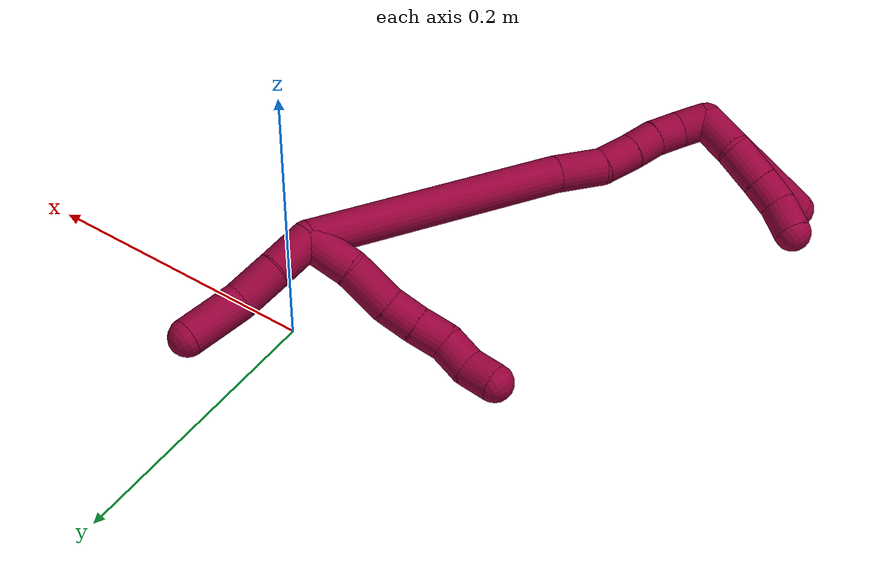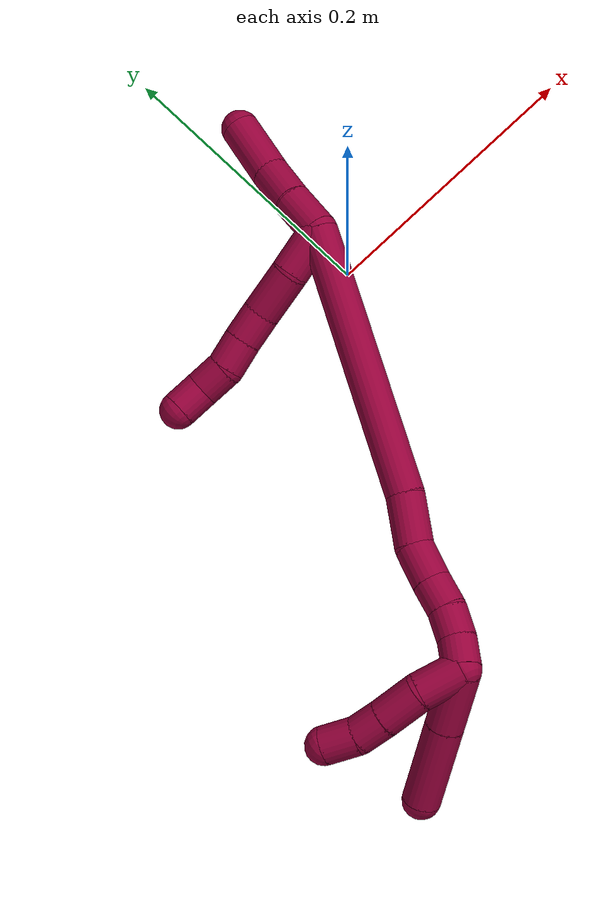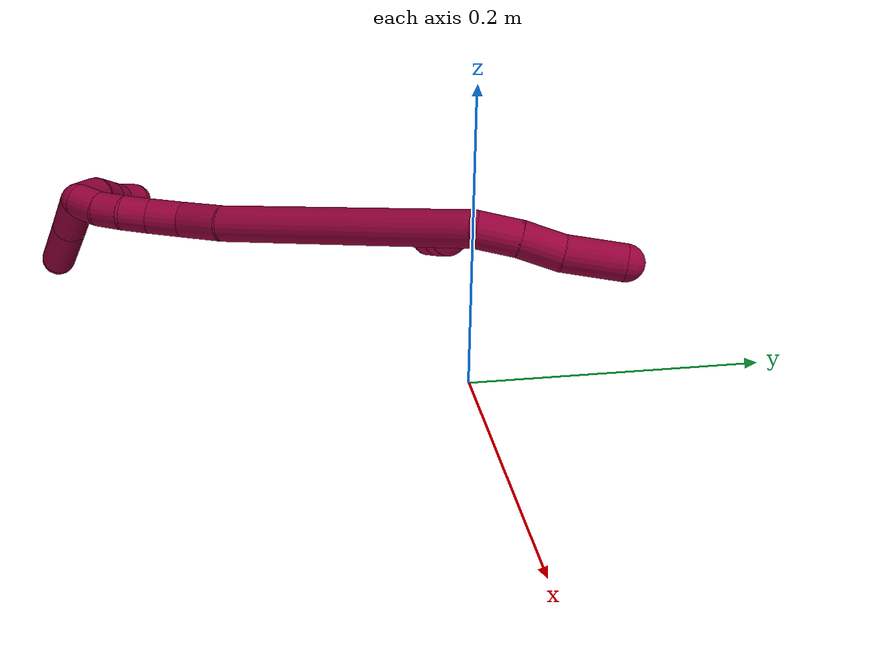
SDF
<sdf version="1.7">
 <world name="default">
  <model name="8">
   <static>0</static>
   <link name="8">
    <collision name="collision-cylinder-e_1_2_8">
     <pose>-0.014618 -0.005665 0.004673 0.881052 -1.10528 -0.565894</pose>
     <geometry><cylinder><radius>0.0125</radius><length>0.032718</length></cylinder></geometry>
     <surface>
      <friction><ode><mu>1.16</mu><mu2>1.16</mu2><slip1>0</slip1><slip2>0</slip2></ode></friction>
      <contact><ode><kp>1e+06</kp><kd>1</kd><max_vel>0</max_vel><min_depth>0.001</min_depth></ode></contact>
     </surface>
    </collision>
    <visual name="visual-cylinder-e_1_2_8">
     <pose>-0.014618 -0.005665 0.004673 0.881052 -1.10528 -0.565894</pose>
     <geometry><cylinder><radius>0.0125</radius><length>0.032718</length></cylinder></geometry>
     <material><ambient>0.584314 0 0.227451 1</ambient></material>
    </visual>
    <collision name="collision-cylinder-e_2_8_9">
     <pose>-0.043111 -0.019643 0.011864 1.27673 -1.01141 -0.779688</pose>
     <geometry><cylinder><radius>0.0125</radius><length>0.032739</length></cylinder></geometry>
     <surface>
      <friction><ode><mu>1.16</mu><mu2>1.16</mu2><slip1>0</slip1><slip2>0</slip2></ode></friction>
      <contact><ode><kp>1e+06</kp><kd>1</kd><max_vel>0</max_vel><min_depth>0.001</min_depth></ode></contact>
     </surface>
    </collision>
    <visual name="visual-cylinder-e_2_8_9">
     <pose>-0.043111 -0.019643 0.011864 1.27673 -1.01141 -0.779688</pose>
     <geometry><cylinder><radius>0.0125</radius><length>0.032739</length></cylinder></geometry>
     <material><ambient>0.584314 0 0.227451 1</ambient></material>
    </visual>
    <collision name="collision-cylinder-e_3_9_10">
     <pose>-0.066618 -0.031867 0.017346 0.921973 -1.09964 -0.590967</pose>
     <geometry><cylinder><radius>0.0125</radius><length>0.021619</length></cylinder></geometry>
     <surface>
      <friction><ode><mu>1.16</mu><mu2>1.16</mu2><slip1>0</slip1><slip2>0</slip2></ode></friction>
      <contact><ode><kp>1e+06</kp><kd>1</kd><max_vel>0</max_vel><min_depth>0.001</min_depth></ode></contact>
     </surface>
    </collision>
    <visual name="visual-cylinder-e_3_9_10">
     <pose>-0.066618 -0.031867 0.017346 0.921973 -1.09964 -0.590967</pose>
     <geometry><cylinder><radius>0.0125</radius><length>0.021619</length></cylinder></geometry>
     <material><ambient>0.584314 0 0.227451 1</ambient></material>
    </visual>
    <collision name="collision-cylinder-e_4_10_11">
     <pose>-0.085616 -0.039327 0.023946 0.77368 -1.07376 -0.475746</pose>
     <geometry><cylinder><radius>0.0125</radius><length>0.021311</length></cylinder></geometry>
     <surface>
      <friction><ode><mu>1.16</mu><mu2>1.16</mu2><slip1>0</slip1><slip2>0</slip2></ode></friction>
      <contact><ode><kp>1e+06</kp><kd>1</kd><max_vel>0</max_vel><min_depth>0.001</min_depth></ode></contact>
     </surface>
    </collision>
    <visual name="visual-cylinder-e_4_10_11">
     <pose>-0.085616 -0.039327 0.023946 0.77368 -1.07376 -0.475746</pose>
     <geometry><cylinder><radius>0.0125</radius><length>0.021311</length></cylinder></geometry>
     <material><ambient>0.584314 0 0.227451 1</ambient></material>
    </visual>
    <collision name="collision-cylinder-e_5_11_12">
     <pose>-0.104892 -0.046345 0.027926 1.47136 -1.2326 -1.14031</pose>
     <geometry><cylinder><radius>0.0125</radius><length>0.021009</length></cylinder></geometry>
     <surface>
      <friction><ode><mu>1.16</mu><mu2>1.16</mu2><slip1>0</slip1><slip2>0</slip2></ode></friction>
      <contact><ode><kp>1e+06</kp><kd>1</kd><max_vel>0</max_vel><min_depth>0.001</min_depth></ode></contact>
     </surface>
    </collision>
    <visual name="visual-cylinder-e_5_11_12">
     <pose>-0.104892 -0.046345 0.027926 1.47136 -1.2326 -1.14031</pose>
     <geometry><cylinder><radius>0.0125</radius><length>0.021009</length></cylinder></geometry>
     <material><ambient>0.584314 0 0.227451 1</ambient></material>
    </visual>
    <collision name="collision-cylinder-e_6_12_6">
     <pose>-0.124881 -0.050157 0.030368 0.162902 -1.36314 -0.132256</pose>
     <geometry><cylinder><radius>0.0125</radius><length>0.020603</length></cylinder></geometry>
     <surface>
      <friction><ode><mu>1.16</mu><mu2>1.16</mu2><slip1>0</slip1><slip2>0</slip2></ode></friction>
      <contact><ode><kp>1e+06</kp><kd>1</kd><max_vel>0</max_vel><min_depth>0.001</min_depth></ode></contact>
     </surface>
    </collision>
    <visual name="visual-cylinder-e_6_12_6">
     <pose>-0.124881 -0.050157 0.030368 0.162902 -1.36314 -0.132256</pose>
     <geometry><cylinder><radius>0.0125</radius><length>0.020603</length></cylinder></geometry>
     <material><ambient>0.584314 0 0.227451 1</ambient></material>
    </visual>
    <collision name="collision-cylinder-e_1_2_13">
     <pose>-0.001435 -0.000485 -0.014834 3.1089 -0.096358 -2.4879</pose>
     <geometry><cylinder><radius>0.0125</radius><length>0.029823</length></cylinder></geometry>
     <surface>
      <friction><ode><mu>1.16</mu><mu2>1.16</mu2><slip1>0</slip1><slip2>0</slip2></ode></friction>
      <contact><ode><kp>1e+06</kp><kd>1</kd><max_vel>0</max_vel><min_depth>0.001</min_depth></ode></contact>
     </surface>
    </collision>
    <visual name="visual-cylinder-e_1_2_13">
     <pose>-0.001435 -0.000485 -0.014834 3.1089 -0.096358 -2.4879</pose>
     <geometry><cylinder><radius>0.0125</radius><length>0.029823</length></cylinder></geometry>
     <material><ambient>0.584314 0 0.227451 1</ambient></material>
    </visual>
    <collision name="collision-cylinder-e_2_13_14">
     <pose>-0.003303 -0.002823 -0.044295 3.01557 -0.029424 -0.45819</pose>
     <geometry><cylinder><radius>0.0125</radius><length>0.029499</length></cylinder></geometry>
     <surface>
      <friction><ode><mu>1.16</mu><mu2>1.16</mu2><slip1>0</slip1><slip2>0</slip2></ode></friction>
      <contact><ode><kp>1e+06</kp><kd>1</kd><max_vel>0</max_vel><min_depth>0.001</min_depth></ode></contact>
     </surface>
    </collision>
    <visual name="visual-cylinder-e_2_13_14">
     <pose>-0.003303 -0.002823 -0.044295 3.01557 -0.029424 -0.45819</pose>
     <geometry><cylinder><radius>0.0125</radius><length>0.029499</length></cylinder></geometry>
     <material><ambient>0.584314 0 0.227451 1</ambient></material>
    </visual>
    <collision name="collision-cylinder-e_3_14_5">
     <pose>-0.003869 -0.003456 -0.079223 -3.08155 -0.006496 0.215489</pose>
     <geometry><cylinder><radius>0.0125</radius><length>0.040678</length></cylinder></geometry>
     <surface>
      <friction><ode><mu>1.16</mu><mu2>1.16</mu2><slip1>0</slip1><slip2>0</slip2></ode></friction>
      <contact><ode><kp>1e+06</kp><kd>1</kd><max_vel>0</max_vel><min_depth>0.001</min_depth></ode></contact>
     </surface>
    </collision>
    <visual name="visual-cylinder-e_3_14_5">
     <pose>-0.003869 -0.003456 -0.079223 -3.08155 -0.006496 0.215489</pose>
     <geometry><cylinder><radius>0.0125</radius><length>0.040678</length></cylinder></geometry>
     <material><ambient>0.584314 0 0.227451 1</ambient></material>
    </visual>
    <collision name="collision-cylinder-e_1_2_15">
     <pose>-0.021591 -0.023671 0.084853 0.272047 -0.240352 -0.033053</pose>
     <geometry><cylinder><radius>0.0125</radius><length>0.1814</length></cylinder></geometry>
     <surface>
      <friction><ode><mu>1.16</mu><mu2>1.16</mu2><slip1>0</slip1><slip2>0</slip2></ode></friction>
      <contact><ode><kp>1e+06</kp><kd>1</kd><max_vel>0</max_vel><min_depth>0.001</min_depth></ode></contact>
     </surface>
    </collision>
    <visual name="visual-cylinder-e_1_2_15">
     <pose>-0.021591 -0.023671 0.084853 0.272047 -0.240352 -0.033053</pose>
     <geometry><cylinder><radius>0.0125</radius><length>0.1814</length></cylinder></geometry>
     <material><ambient>0.584314 0 0.227451 1</ambient></material>
    </visual>
    <collision name="collision-cylinder-e_2_15_16">
     <pose>-0.049433 -0.051161 0.184772 0.248296 -0.382445 -0.048306</pose>
     <geometry><cylinder><radius>0.0125</radius><length>0.033505</length></cylinder></geometry>
     <surface>
      <friction><ode><mu>1.16</mu><mu2>1.16</mu2><slip1>0</slip1><slip2>0</slip2></ode></friction>
      <contact><ode><kp>1e+06</kp><kd>1</kd><max_vel>0</max_vel><min_depth>0.001</min_depth></ode></contact>
     </surface>
    </collision>
    <visual name="visual-cylinder-e_2_15_16">
     <pose>-0.049433 -0.051161 0.184772 0.248296 -0.382445 -0.048306</pose>
     <geometry><cylinder><radius>0.0125</radius><length>0.033505</length></cylinder></geometry>
     <material><ambient>0.584314 0 0.227451 1</ambient></material>
    </visual>
    <collision name="collision-cylinder-e_3_16_17">
     <pose>-0.057029 -0.056781 0.212177 0.144887 -0.107323 -0.007796</pose>
     <geometry><cylinder><radius>0.0125</radius><length>0.025086</length></cylinder></geometry>
     <surface>
      <friction><ode><mu>1.16</mu><mu2>1.16</mu2><slip1>0</slip1><slip2>0</slip2></ode></friction>
      <contact><ode><kp>1e+06</kp><kd>1</kd><max_vel>0</max_vel><min_depth>0.001</min_depth></ode></contact>
     </surface>
    </collision>
    <visual name="visual-cylinder-e_3_16_17">
     <pose>-0.057029 -0.056781 0.212177 0.144887 -0.107323 -0.007796</pose>
     <geometry><cylinder><radius>0.0125</radius><length>0.025086</length></cylinder></geometry>
     <material><ambient>0.584314 0 0.227451 1</ambient></material>
    </visual>
    <collision name="collision-cylinder-e_4_17_18">
     <pose>-0.058951 -0.059723 0.234437 0.114528 -0.05792 -0.003321</pose>
     <geometry><cylinder><radius>0.0125</radius><length>0.020005</length></cylinder></geometry>
     <surface>
      <friction><ode><mu>1.16</mu><mu2>1.16</mu2><slip1>0</slip1><slip2>0</slip2></ode></friction>
      <contact><ode><kp>1e+06</kp><kd>1</kd><max_vel>0</max_vel><min_depth>0.001</min_depth></ode></contact>
     </surface>
    </collision>
    <visual name="visual-cylinder-e_4_17_18">
     <pose>-0.058951 -0.059723 0.234437 0.114528 -0.05792 -0.003321</pose>
     <geometry><cylinder><radius>0.0125</radius><length>0.020005</length></cylinder></geometry>
     <material><ambient>0.584314 0 0.227451 1</ambient></material>
    </visual>
    <collision name="collision-cylinder-e_5_18_19">
     <pose>-0.061938 -0.062228 0.253968 0.140944 -0.243134 -0.017247</pose>
     <geometry><cylinder><radius>0.0125</radius><length>0.020002</length></cylinder></geometry>
     <surface>
      <friction><ode><mu>1.16</mu><mu2>1.16</mu2><slip1>0</slip1><slip2>0</slip2></ode></friction>
      <contact><ode><kp>1e+06</kp><kd>1</kd><max_vel>0</max_vel><min_depth>0.001</min_depth></ode></contact>
     </surface>
    </collision>
    <visual name="visual-cylinder-e_5_18_19">
     <pose>-0.061938 -0.062228 0.253968 0.140944 -0.243134 -0.017247</pose>
     <geometry><cylinder><radius>0.0125</radius><length>0.020002</length></cylinder></geometry>
     <material><ambient>0.584314 0 0.227451 1</ambient></material>
    </visual>
    <collision name="collision-cylinder-e_6_19_1">
     <pose>-0.068147 -0.063521 0.272829 -0.007559 -0.389934 0.001493</pose>
     <geometry><cylinder><radius>0.0125</radius><length>0.020003</length></cylinder></geometry>
     <surface>
      <friction><ode><mu>1.16</mu><mu2>1.16</mu2><slip1>0</slip1><slip2>0</slip2></ode></friction>
      <contact><ode><kp>1e+06</kp><kd>1</kd><max_vel>0</max_vel><min_depth>0.001</min_depth></ode></contact>
     </surface>
    </collision>
    <visual name="visual-cylinder-e_6_19_1">
     <pose>-0.068147 -0.063521 0.272829 -0.007559 -0.389934 0.001493</pose>
     <geometry><cylinder><radius>0.0125</radius><length>0.020003</length></cylinder></geometry>
     <material><ambient>0.584314 0 0.227451 1</ambient></material>
    </visual>
    <collision name="collision-cylinder-e_1_1_20">
     <pose>-0.086553 -0.064709 0.280584 2.44238 -1.43779 -2.35211</pose>
     <geometry><cylinder><radius>0.0125</radius><length>0.029468</length></cylinder></geometry>
     <surface>
      <friction><ode><mu>1.16</mu><mu2>1.16</mu2><slip1>0</slip1><slip2>0</slip2></ode></friction>
      <contact><ode><kp>1e+06</kp><kd>1</kd><max_vel>0</max_vel><min_depth>0.001</min_depth></ode></contact>
     </surface>
    </collision>
    <visual name="visual-cylinder-e_1_1_20">
     <pose>-0.086553 -0.064709 0.280584 2.44238 -1.43779 -2.35211</pose>
     <geometry><cylinder><radius>0.0125</radius><length>0.029468</length></cylinder></geometry>
     <material><ambient>0.584314 0 0.227451 1</ambient></material>
    </visual>
    <collision name="collision-cylinder-e_2_20_21">
     <pose>-0.114252 -0.070739 0.278482 1.69721 -1.21871 -1.34003</pose>
     <geometry><cylinder><radius>0.0125</radius><length>0.027901</length></cylinder></geometry>
     <surface>
      <friction><ode><mu>1.16</mu><mu2>1.16</mu2><slip1>0</slip1><slip2>0</slip2></ode></friction>
      <contact><ode><kp>1e+06</kp><kd>1</kd><max_vel>0</max_vel><min_depth>0.001</min_depth></ode></contact>
     </surface>
    </collision>
    <visual name="visual-cylinder-e_2_20_21">
     <pose>-0.114252 -0.070739 0.278482 1.69721 -1.21871 -1.34003</pose>
     <geometry><cylinder><radius>0.0125</radius><length>0.027901</length></cylinder></geometry>
     <material><ambient>0.584314 0 0.227451 1</ambient></material>
    </visual>
    <collision name="collision-cylinder-e_3_21_22">
     <pose>-0.136738 -0.07895 0.276974 1.82719 -1.209 -1.46032</pose>
     <geometry><cylinder><radius>0.0125</radius><length>0.020084</length></cylinder></geometry>
     <surface>
      <friction><ode><mu>1.16</mu><mu2>1.16</mu2><slip1>0</slip1><slip2>0</slip2></ode></friction>
      <contact><ode><kp>1e+06</kp><kd>1</kd><max_vel>0</max_vel><min_depth>0.001</min_depth></ode></contact>
     </surface>
    </collision>
    <visual name="visual-cylinder-e_3_21_22">
     <pose>-0.136738 -0.07895 0.276974 1.82719 -1.209 -1.46032</pose>
     <geometry><cylinder><radius>0.0125</radius><length>0.020084</length></cylinder></geometry>
     <material><ambient>0.584314 0 0.227451 1</ambient></material>
    </visual>
    <collision name="collision-cylinder-e_4_22_4">
     <pose>-0.156539 -0.084518 0.272305 2.62698 -1.17675 -2.39027</pose>
     <geometry><cylinder><radius>0.0125</radius><length>0.022547</length></cylinder></geometry>
     <surface>
      <friction><ode><mu>1.16</mu><mu2>1.16</mu2><slip1>0</slip1><slip2>0</slip2></ode></friction>
      <contact><ode><kp>1e+06</kp><kd>1</kd><max_vel>0</max_vel><min_depth>0.001</min_depth></ode></contact>
     </surface>
    </collision>
    <visual name="visual-cylinder-e_4_22_4">
     <pose>-0.156539 -0.084518 0.272305 2.62698 -1.17675 -2.39027</pose>
     <geometry><cylinder><radius>0.0125</radius><length>0.022547</length></cylinder></geometry>
     <material><ambient>0.584314 0 0.227451 1</ambient></material>
    </visual>
    <collision name="collision-cylinder-e_1_1_23">
     <pose>-0.08448 -0.078937 0.288746 1.16426 -0.639179 -0.428952</pose>
     <geometry><cylinder><radius>0.0125</radius><length>0.042013</length></cylinder></geometry>
     <surface>
      <friction><ode><mu>1.16</mu><mu2>1.16</mu2><slip1>0</slip1><slip2>0</slip2></ode></friction>
      <contact><ode><kp>1e+06</kp><kd>1</kd><max_vel>0</max_vel><min_depth>0.001</min_depth></ode></contact>
     </surface>
    </collision>
    <visual name="visual-cylinder-e_1_1_23">
     <pose>-0.08448 -0.078937 0.288746 1.16426 -0.639179 -0.428952</pose>
     <geometry><cylinder><radius>0.0125</radius><length>0.042013</length></cylinder></geometry>
     <material><ambient>0.584314 0 0.227451 1</ambient></material>
    </visual>
    <collision name="collision-cylinder-e_2_23_3">
     <pose>-0.11444 -0.115603 0.304804 1.15346 -0.644928 -0.428044</pose>
     <geometry><cylinder><radius>0.0125</radius><length>0.057987</length></cylinder></geometry>
     <surface>
      <friction><ode><mu>1.16</mu><mu2>1.16</mu2><slip1>0</slip1><slip2>0</slip2></ode></friction>
      <contact><ode><kp>1e+06</kp><kd>1</kd><max_vel>0</max_vel><min_depth>0.001</min_depth></ode></contact>
     </surface>
    </collision>
    <visual name="visual-cylinder-e_2_23_3">
     <pose>-0.11444 -0.115603 0.304804 1.15346 -0.644928 -0.428044</pose>
     <geometry><cylinder><radius>0.0125</radius><length>0.057987</length></cylinder></geometry>
     <material><ambient>0.584314 0 0.227451 1</ambient></material>
    </visual>
    <collision name="collision-sphere-3">
     <pose>-0.13187 -0.136785 0.314195 0 -0 0</pose>
     <geometry><sphere><radius>0.0125</radius></sphere></geometry>
     <surface>
      <friction><ode><mu>1.16</mu><mu2>1.16</mu2><slip1>0</slip1><slip2>0</slip2></ode></friction>
      <contact><ode><kp>1e+06</kp><kd>1</kd><max_vel>0</max_vel><min_depth>0.001</min_depth></ode></contact>
     </surface>
    </collision>
    <visual name="visual-sphere-3">
     <pose>-0.13187 -0.136785 0.314195 0 -0 0</pose>
     <geometry><sphere><radius>0.0125</radius></sphere></geometry>
     <material><ambient>0.584314 0 0.227451 1</ambient></material>
    </visual>
    <collision name="collision-sphere-23">
     <pose>-0.097011 -0.094422 0.295413 0 -0 0</pose>
     <geometry><sphere><radius>0.0125</radius></sphere></geometry>
     <surface>
      <friction><ode><mu>1.16</mu><mu2>1.16</mu2><slip1>0</slip1><slip2>0</slip2></ode></friction>
      <contact><ode><kp>1e+06</kp><kd>1</kd><max_vel>0</max_vel><min_depth>0.001</min_depth></ode></contact>
     </surface>
    </collision>
    <visual name="visual-sphere-23">
     <pose>-0.097011 -0.094422 0.295413 0 -0 0</pose>
     <geometry><sphere><radius>0.0125</radius></sphere></geometry>
     <material><ambient>0.584314 0 0.227451 1</ambient></material>
    </visual>
    <collision name="collision-sphere-4">
     <pose>-0.166949 -0.086649 0.268537 0 -0 0</pose>
     <geometry><sphere><radius>0.0125</radius></sphere></geometry>
     <surface>
      <friction><ode><mu>1.16</mu><mu2>1.16</mu2><slip1>0</slip1><slip2>0</slip2></ode></friction>
      <contact><ode><kp>1e+06</kp><kd>1</kd><max_vel>0</max_vel><min_depth>0.001</min_depth></ode></contact>
     </surface>
    </collision>
    <visual name="visual-sphere-4">
     <pose>-0.166949 -0.086649 0.268537 0 -0 0</pose>
     <geometry><sphere><radius>0.0125</radius></sphere></geometry>
     <material><ambient>0.584314 0 0.227451 1</ambient></material>
    </visual>
    <collision name="collision-sphere-22">
     <pose>-0.14613 -0.082388 0.276073 0 -0 0</pose>
     <geometry><sphere><radius>0.0125</radius></sphere></geometry>
     <surface>
      <friction><ode><mu>1.16</mu><mu2>1.16</mu2><slip1>0</slip1><slip2>0</slip2></ode></friction>
      <contact><ode><kp>1e+06</kp><kd>1</kd><max_vel>0</max_vel><min_depth>0.001</min_depth></ode></contact>
     </surface>
    </collision>
    <visual name="visual-sphere-22">
     <pose>-0.14613 -0.082388 0.276073 0 -0 0</pose>
     <geometry><sphere><radius>0.0125</radius></sphere></geometry>
     <material><ambient>0.584314 0 0.227451 1</ambient></material>
    </visual>
    <collision name="collision-sphere-21">
     <pose>-0.127346 -0.075512 0.277875 0 -0 0</pose>
     <geometry><sphere><radius>0.0125</radius></sphere></geometry>
     <surface>
      <friction><ode><mu>1.16</mu><mu2>1.16</mu2><slip1>0</slip1><slip2>0</slip2></ode></friction>
      <contact><ode><kp>1e+06</kp><kd>1</kd><max_vel>0</max_vel><min_depth>0.001</min_depth></ode></contact>
     </surface>
    </collision>
    <visual name="visual-sphere-21">
     <pose>-0.127346 -0.075512 0.277875 0 -0 0</pose>
     <geometry><sphere><radius>0.0125</radius></sphere></geometry>
     <material><ambient>0.584314 0 0.227451 1</ambient></material>
    </visual>
    <collision name="collision-sphere-20">
     <pose>-0.101157 -0.065967 0.279088 0 -0 0</pose>
     <geometry><sphere><radius>0.0125</radius></sphere></geometry>
     <surface>
      <friction><ode><mu>1.16</mu><mu2>1.16</mu2><slip1>0</slip1><slip2>0</slip2></ode></friction>
      <contact><ode><kp>1e+06</kp><kd>1</kd><max_vel>0</max_vel><min_depth>0.001</min_depth></ode></contact>
     </surface>
    </collision>
    <visual name="visual-sphere-20">
     <pose>-0.101157 -0.065967 0.279088 0 -0 0</pose>
     <geometry><sphere><radius>0.0125</radius></sphere></geometry>
     <material><ambient>0.584314 0 0.227451 1</ambient></material>
    </visual>
    <collision name="collision-sphere-12">
     <pose>-0.114801 -0.049813 0.028272 0 -0 0</pose>
     <geometry><sphere><radius>0.0125</radius></sphere></geometry>
     <surface>
      <friction><ode><mu>1.16</mu><mu2>1.16</mu2><slip1>0</slip1><slip2>0</slip2></ode></friction>
      <contact><ode><kp>1e+06</kp><kd>1</kd><max_vel>0</max_vel><min_depth>0.001</min_depth></ode></contact>
     </surface>
    </collision>
    <visual name="visual-sphere-12">
     <pose>-0.114801 -0.049813 0.028272 0 -0 0</pose>
     <geometry><sphere><radius>0.0125</radius></sphere></geometry>
     <material><ambient>0.584314 0 0.227451 1</ambient></material>
    </visual>
    <collision name="collision-sphere-11">
     <pose>-0.094982 -0.042877 0.02758 0 -0 0</pose>
     <geometry><sphere><radius>0.0125</radius></sphere></geometry>
     <surface>
      <friction><ode><mu>1.16</mu><mu2>1.16</mu2><slip1>0</slip1><slip2>0</slip2></ode></friction>
      <contact><ode><kp>1e+06</kp><kd>1</kd><max_vel>0</max_vel><min_depth>0.001</min_depth></ode></contact>
     </surface>
    </collision>
    <visual name="visual-sphere-11">
     <pose>-0.094982 -0.042877 0.02758 0 -0 0</pose>
     <geometry><sphere><radius>0.0125</radius></sphere></geometry>
     <material><ambient>0.584314 0 0.227451 1</ambient></material>
    </visual>
    <collision name="collision-sphere-10">
     <pose>-0.07625 -0.035776 0.020311 0 -0 0</pose>
     <geometry><sphere><radius>0.0125</radius></sphere></geometry>
     <surface>
      <friction><ode><mu>1.16</mu><mu2>1.16</mu2><slip1>0</slip1><slip2>0</slip2></ode></friction>
      <contact><ode><kp>1e+06</kp><kd>1</kd><max_vel>0</max_vel><min_depth>0.001</min_depth></ode></contact>
     </surface>
    </collision>
    <visual name="visual-sphere-10">
     <pose>-0.07625 -0.035776 0.020311 0 -0 0</pose>
     <geometry><sphere><radius>0.0125</radius></sphere></geometry>
     <material><ambient>0.584314 0 0.227451 1</ambient></material>
    </visual>
    <collision name="collision-sphere-9">
     <pose>-0.056986 -0.027957 0.014381 0 -0 0</pose>
     <geometry><sphere><radius>0.0125</radius></sphere></geometry>
     <surface>
      <friction><ode><mu>1.16</mu><mu2>1.16</mu2><slip1>0</slip1><slip2>0</slip2></ode></friction>
      <contact><ode><kp>1e+06</kp><kd>1</kd><max_vel>0</max_vel><min_depth>0.001</min_depth></ode></contact>
     </surface>
    </collision>
    <visual name="visual-sphere-9">
     <pose>-0.056986 -0.027957 0.014381 0 -0 0</pose>
     <geometry><sphere><radius>0.0125</radius></sphere></geometry>
     <material><ambient>0.584314 0 0.227451 1</ambient></material>
    </visual>
    <collision name="collision-sphere-2">
     <geometry><sphere><radius>0.0125</radius></sphere></geometry>
     <surface>
      <friction><ode><mu>1.16</mu><mu2>1.16</mu2><slip1>0</slip1><slip2>0</slip2></ode></friction>
      <contact><ode><kp>1e+06</kp><kd>1</kd><max_vel>0</max_vel><min_depth>0.001</min_depth></ode></contact>
     </surface>
    </collision>
    <visual name="visual-sphere-2">
     <geometry><sphere><radius>0.0125</radius></sphere></geometry>
     <material><ambient>0.584314 0 0.227451 1</ambient></material>
    </visual>
    <collision name="collision-sphere-19">
     <pose>-0.064345 -0.063591 0.263579 0 -0 0</pose>
     <geometry><sphere><radius>0.0125</radius></sphere></geometry>
     <surface>
      <friction><ode><mu>1.16</mu><mu2>1.16</mu2><slip1>0</slip1><slip2>0</slip2></ode></friction>
      <contact><ode><kp>1e+06</kp><kd>1</kd><max_vel>0</max_vel><min_depth>0.001</min_depth></ode></contact>
     </surface>
    </collision>
    <visual name="visual-sphere-19">
     <pose>-0.064345 -0.063591 0.263579 0 -0 0</pose>
     <geometry><sphere><radius>0.0125</radius></sphere></geometry>
     <material><ambient>0.584314 0 0.227451 1</ambient></material>
    </visual>
    <collision name="collision-sphere-8">
     <pose>-0.029237 -0.011329 0.009346 0 -0 0</pose>
     <geometry><sphere><radius>0.0125</radius></sphere></geometry>
     <surface>
      <friction><ode><mu>1.16</mu><mu2>1.16</mu2><slip1>0</slip1><slip2>0</slip2></ode></friction>
      <contact><ode><kp>1e+06</kp><kd>1</kd><max_vel>0</max_vel><min_depth>0.001</min_depth></ode></contact>
     </surface>
    </collision>
    <visual name="visual-sphere-8">
     <pose>-0.029237 -0.011329 0.009346 0 -0 0</pose>
     <geometry><sphere><radius>0.0125</radius></sphere></geometry>
     <material><ambient>0.584314 0 0.227451 1</ambient></material>
    </visual>
    <collision name="collision-sphere-6">
     <pose>-0.134962 -0.050502 0.032464 0 -0 0</pose>
     <geometry><sphere><radius>0.0125</radius></sphere></geometry>
     <surface>
      <friction><ode><mu>1.16</mu><mu2>1.16</mu2><slip1>0</slip1><slip2>0</slip2></ode></friction>
      <contact><ode><kp>1e+06</kp><kd>1</kd><max_vel>0</max_vel><min_depth>0.001</min_depth></ode></contact>
     </surface>
    </collision>
    <visual name="visual-sphere-6">
     <pose>-0.134962 -0.050502 0.032464 0 -0 0</pose>
     <geometry><sphere><radius>0.0125</radius></sphere></geometry>
     <material><ambient>0.584314 0 0.227451 1</ambient></material>
    </visual>
    <collision name="collision-sphere-13">
     <pose>-0.002869 -0.00097 -0.029668 0 -0 0</pose>
     <geometry><sphere><radius>0.0125</radius></sphere></geometry>
     <surface>
      <friction><ode><mu>1.16</mu><mu2>1.16</mu2><slip1>0</slip1><slip2>0</slip2></ode></friction>
      <contact><ode><kp>1e+06</kp><kd>1</kd><max_vel>0</max_vel><min_depth>0.001</min_depth></ode></contact>
     </surface>
    </collision>
    <visual name="visual-sphere-13">
     <pose>-0.002869 -0.00097 -0.029668 0 -0 0</pose>
     <geometry><sphere><radius>0.0125</radius></sphere></geometry>
     <material><ambient>0.584314 0 0.227451 1</ambient></material>
    </visual>
    <collision name="collision-sphere-14">
     <pose>-0.003737 -0.004676 -0.058921 0 -0 0</pose>
     <geometry><sphere><radius>0.0125</radius></sphere></geometry>
     <surface>
      <friction><ode><mu>1.16</mu><mu2>1.16</mu2><slip1>0</slip1><slip2>0</slip2></ode></friction>
      <contact><ode><kp>1e+06</kp><kd>1</kd><max_vel>0</max_vel><min_depth>0.001</min_depth></ode></contact>
     </surface>
    </collision>
    <visual name="visual-sphere-14">
     <pose>-0.003737 -0.004676 -0.058921 0 -0 0</pose>
     <geometry><sphere><radius>0.0125</radius></sphere></geometry>
     <material><ambient>0.584314 0 0.227451 1</ambient></material>
    </visual>
    <collision name="collision-sphere-5">
     <pose>-0.004001 -0.002236 -0.099525 0 -0 0</pose>
     <geometry><sphere><radius>0.0125</radius></sphere></geometry>
     <surface>
      <friction><ode><mu>1.16</mu><mu2>1.16</mu2><slip1>0</slip1><slip2>0</slip2></ode></friction>
      <contact><ode><kp>1e+06</kp><kd>1</kd><max_vel>0</max_vel><min_depth>0.001</min_depth></ode></contact>
     </surface>
    </collision>
    <visual name="visual-sphere-5">
     <pose>-0.004001 -0.002236 -0.099525 0 -0 0</pose>
     <geometry><sphere><radius>0.0125</radius></sphere></geometry>
     <material><ambient>0.584314 0 0.227451 1</ambient></material>
    </visual>
    <collision name="collision-sphere-15">
     <pose>-0.043181 -0.047342 0.169706 0 -0 0</pose>
     <geometry><sphere><radius>0.0125</radius></sphere></geometry>
     <surface>
      <friction><ode><mu>1.16</mu><mu2>1.16</mu2><slip1>0</slip1><slip2>0</slip2></ode></friction>
      <contact><ode><kp>1e+06</kp><kd>1</kd><max_vel>0</max_vel><min_depth>0.001</min_depth></ode></contact>
     </surface>
    </collision>
    <visual name="visual-sphere-15">
     <pose>-0.043181 -0.047342 0.169706 0 -0 0</pose>
     <geometry><sphere><radius>0.0125</radius></sphere></geometry>
     <material><ambient>0.584314 0 0.227451 1</ambient></material>
    </visual>
    <collision name="collision-sphere-16">
     <pose>-0.055685 -0.054981 0.199837 0 -0 0</pose>
     <geometry><sphere><radius>0.0125</radius></sphere></geometry>
     <surface>
      <friction><ode><mu>1.16</mu><mu2>1.16</mu2><slip1>0</slip1><slip2>0</slip2></ode></friction>
      <contact><ode><kp>1e+06</kp><kd>1</kd><max_vel>0</max_vel><min_depth>0.001</min_depth></ode></contact>
     </surface>
    </collision>
    <visual name="visual-sphere-16">
     <pose>-0.055685 -0.054981 0.199837 0 -0 0</pose>
     <geometry><sphere><radius>0.0125</radius></sphere></geometry>
     <material><ambient>0.584314 0 0.227451 1</ambient></material>
    </visual>
    <collision name="collision-sphere-17">
     <pose>-0.058372 -0.058582 0.224517 0 -0 0</pose>
     <geometry><sphere><radius>0.0125</radius></sphere></geometry>
     <surface>
      <friction><ode><mu>1.16</mu><mu2>1.16</mu2><slip1>0</slip1><slip2>0</slip2></ode></friction>
      <contact><ode><kp>1e+06</kp><kd>1</kd><max_vel>0</max_vel><min_depth>0.001</min_depth></ode></contact>
     </surface>
    </collision>
    <visual name="visual-sphere-17">
     <pose>-0.058372 -0.058582 0.224517 0 -0 0</pose>
     <geometry><sphere><radius>0.0125</radius></sphere></geometry>
     <material><ambient>0.584314 0 0.227451 1</ambient></material>
    </visual>
    <collision name="collision-sphere-18">
     <pose>-0.05953 -0.060864 0.244358 0 -0 0</pose>
     <geometry><sphere><radius>0.0125</radius></sphere></geometry>
     <surface>
      <friction><ode><mu>1.16</mu><mu2>1.16</mu2><slip1>0</slip1><slip2>0</slip2></ode></friction>
      <contact><ode><kp>1e+06</kp><kd>1</kd><max_vel>0</max_vel><min_depth>0.001</min_depth></ode></contact>
     </surface>
    </collision>
    <visual name="visual-sphere-18">
     <pose>-0.05953 -0.060864 0.244358 0 -0 0</pose>
     <geometry><sphere><radius>0.0125</radius></sphere></geometry>
     <material><ambient>0.584314 0 0.227451 1</ambient></material>
    </visual>
    <collision name="collision-sphere-1">
     <pose>-0.071949 -0.063451 0.282079 0 -0 0</pose>
     <geometry><sphere><radius>0.0125</radius></sphere></geometry>
     <surface>
      <friction><ode><mu>1.16</mu><mu2>1.16</mu2><slip1>0</slip1><slip2>0</slip2></ode></friction>
      <contact><ode><kp>1e+06</kp><kd>1</kd><max_vel>0</max_vel><min_depth>0.001</min_depth></ode></contact>
     </surface>
    </collision>
    <visual name="visual-sphere-1">
     <pose>-0.071949 -0.063451 0.282079 0 -0 0</pose>
     <geometry><sphere><radius>0.0125</radius></sphere></geometry>
     <material><ambient>0.584314 0 0.227451 1</ambient></material>
    </visual>
    <inertial>
     <pose>-0.057617 -0.04418 0.129795 0 -0 0</pose>
     <mass>0.75</mass>
     <inertia>
      <ixx>0.000469</ixx>
      <ixy>0</ixy>
      <ixz>0</ixz>
      <iyy>0.000478</iyy>
      <iyz>0</iyz>
      <izz>0.00034</izz>
     </inertia>
    </inertial>
   </link>
   <pose>-0.021452 0.005177 0.100399 1.39054 -0.083092 -0.243503</pose>
  </model>
 </world>
</sdf>
